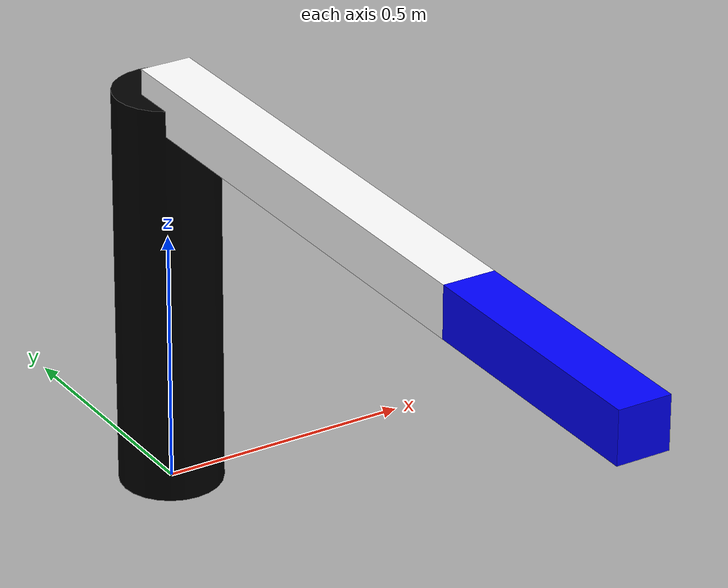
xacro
<?xml version="1.0"?>
<robot name="scara_adv">

<!-- simple two-axis scara robot -->

<material name="blue">
    <color rgba="0 0 1 1"/>
</material>

<material name="black">
    <color rgba="0 0 0 1"/>
</material>

<material name="white">
    <color rgba="1 1 1 1"/>
</material>

<!-- world link -->
<link name="world"/>

<!-- base_link and its fixed joint -->
<joint name="joint_fix" type="fixed">
  <parent link="world"/>
  <child link="base_link"/>
</joint>

<link name="base_link">

  <visual>
    <origin xyz="0 0 0.4" rpy="0 0 0"/>
    <geometry>
      <cylinder length="0.8" radius="0.1"/>

    </geometry>
    <material name="black"/>
  </visual>

</link>

<!-- the first arm of the scara, with revolute joint rotating along z axis -->
<!-- arm length between two rotation axis is 1 -->
 <!--Joint Link 1 -->
<joint name="rev1" type="revolute">
  <parent link="base_link"/>
  <child link="arm1"/>
  <origin xyz="0 0 0.8" rpy="0 0 0"/>
  <axis xyz="0 0 1"/>
  <limit effort="1000" velocity="1000" lower="-1" upper="1"/>
</joint>

<link name="arm1">

  <visual>
    <origin xyz="0.0 -0.5 0" rpy="0 0 0"/>
    <geometry>
      <box size="0.1 1 0.1"/>
    </geometry>
    <material name="white"/>
  </visual>

 <!--Joint Link 2 -->
</link>

<joint name="rev2" type="revolute">
  <parent link="arm1"/>
  <child link="arm2"/>
  <origin xyz="0 -1 0" rpy="0 0 0"/>
  <axis xyz="0 0 1"/>
  <limit effort="1000" velocity="1000" lower="-1" upper="1"/>
</joint>

<link name="arm2">

  <visual>
    <origin xyz="0.0 -0.25 0" rpy="0 0 0"/>
    <geometry>
      <box size="0.1 0.5 0.1"/>
    </geometry>
    <material name="blue"/>
  </visual>

</link>
<!--gazebo reference="arm1"-->
<!--/gazebo-->

</robot>
